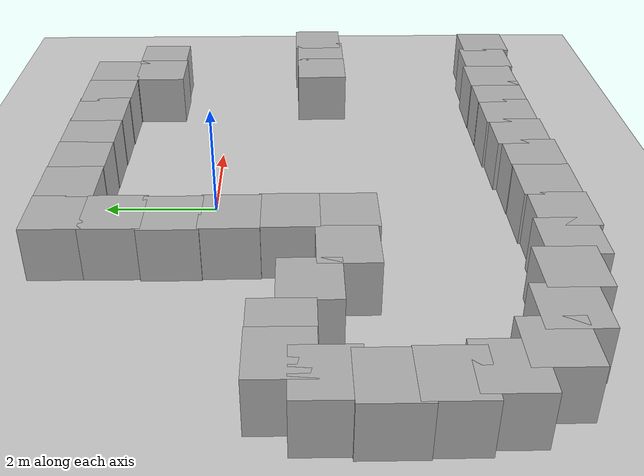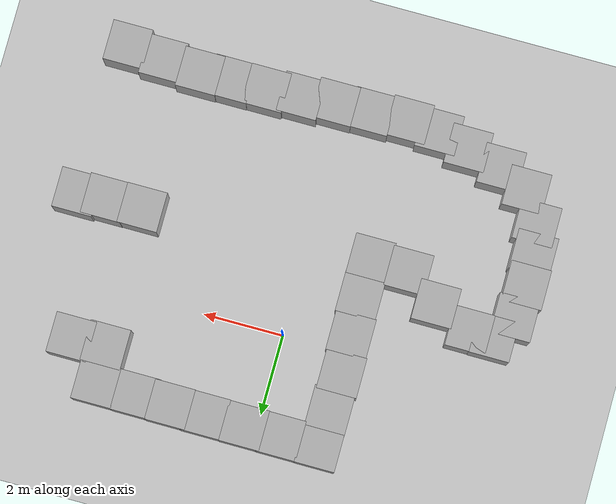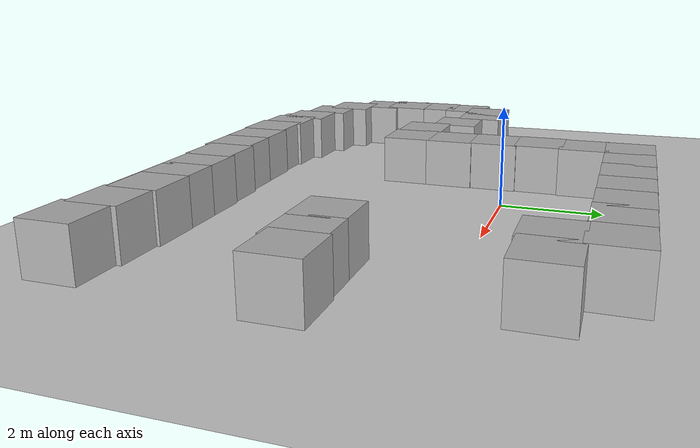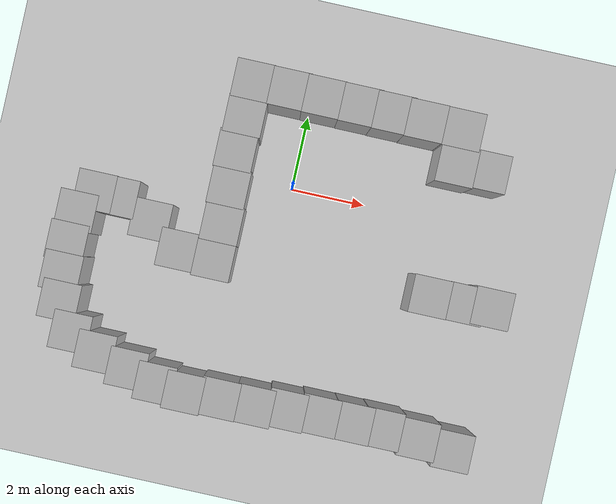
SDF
<sdf version="1.10">
 <world name="empty">
  <model name="ground_plane">
   <static>true</static>
   <link name="link">
    <collision name="collision">
     <geometry><plane><normal>0 0 1</normal><size>100 100</size></plane></geometry>
    </collision>
    <visual name="visual">
     <geometry><plane><normal>0 0 1</normal><size>100 100</size></plane></geometry>
     <material>
      <ambient>0.800000012 0.800000012 0.800000012 1</ambient>
      <diffuse>0.800000012 0.800000012 0.800000012 1</diffuse>
      <specular>0.800000012 0.800000012 0.800000012 1</specular>
     </material>
    </visual>
    <inertial>
     <mass>1</mass>
     <inertia><ixx>1</ixx><ixy>0</ixy><ixz>0</ixz><iyy>1</iyy><iyz>0</iyz><izz>1</izz></inertia>
    </inertial>
   </link>
  </model>
  <model name="box">
   <pose>3.0079871161953129 2.3686500018375138 0.5 0 0 0</pose>
   <link name="box_link">
    <inertial>
     <inertia><ixx>0.16666</ixx><ixy>0</ixy><ixz>0</ixz><iyy>0.16666</iyy><iyz>0</iyz><izz>0.16666</izz></inertia>
     <mass>1</mass>
    </inertial>
    <collision name="box_collision"><geometry><box><size>1 1 1</size></box></geometry></collision>
    <visual name="box_visual">
     <geometry><box><size>1 1 1</size></box></geometry>
     <material>
      <ambient>0.300000012 0.300000012 0.300000012 1</ambient>
      <diffuse>0.699999988 0.699999988 0.699999988 1</diffuse>
      <specular>1 1 1 1</specular>
     </material>
    </visual>
   </link>
   <static>false</static>
  </model>
  <model name="box_0">
   <pose>2.1453732176479967 2.3808256733937765 0.5 0 0 0</pose>
   <link name="box_link">
    <inertial>
     <inertia><ixx>0.16666</ixx><ixy>0</ixy><ixz>0</ixz><iyy>0.16666</iyy><iyz>0</iyz><izz>0.16666</izz></inertia>
     <mass>1</mass>
    </inertial>
    <collision name="box_collision"><geometry><box><size>1 1 1</size></box></geometry></collision>
    <visual name="box_visual">
     <geometry><box><size>1 1 1</size></box></geometry>
     <material>
      <ambient>0.300000012 0.300000012 0.300000012 1</ambient>
      <diffuse>0.699999988 0.699999988 0.699999988 1</diffuse>
      <specular>1 1 1 1</specular>
     </material>
    </visual>
   </link>
   <static>false</static>
  </model>
  <model name="box_1">
   <pose>1.2614542500504333 2.3905149469252533 0.5 0 0 0</pose>
   <link name="box_link">
    <inertial>
     <inertia><ixx>0.16666</ixx><ixy>0</ixy><ixz>0</ixz><iyy>0.16666</iyy><iyz>0</iyz><izz>0.16666</izz></inertia>
     <mass>1</mass>
    </inertial>
    <collision name="box_collision"><geometry><box><size>1 1 1</size></box></geometry></collision>
    <visual name="box_visual">
     <geometry><box><size>1 1 1</size></box></geometry>
     <material>
      <ambient>0.300000012 0.300000012 0.300000012 1</ambient>
      <diffuse>0.699999988 0.699999988 0.699999988 1</diffuse>
      <specular>1 1 1 1</specular>
     </material>
    </visual>
   </link>
   <static>false</static>
  </model>
  <model name="box_2">
   <pose>0.29255337068882481 2.3982446939954603 0.5 0 0 0</pose>
   <link name="box_link">
    <inertial>
     <inertia><ixx>0.16666</ixx><ixy>0</ixy><ixz>0</ixz><iyy>0.16666</iyy><iyz>0</iyz><izz>0.16666</izz></inertia>
     <mass>1</mass>
    </inertial>
    <collision name="box_collision"><geometry><box><size>1 1 1</size></box></geometry></collision>
    <visual name="box_visual">
     <geometry><box><size>1 1 1</size></box></geometry>
     <material>
      <ambient>0.300000012 0.300000012 0.300000012 1</ambient>
      <diffuse>0.699999988 0.699999988 0.699999988 1</diffuse>
      <specular>1 1 1 1</specular>
     </material>
    </visual>
   </link>
   <static>false</static>
  </model>
  <model name="box_3">
   <pose>-0.62413214879304268 2.4062911094616499 0.5 0 0 0</pose>
   <link name="box_link">
    <inertial>
     <inertia><ixx>0.16666</ixx><ixy>0</ixy><ixz>0</ixz><iyy>0.16666</iyy><iyz>0</iyz><izz>0.16666</izz></inertia>
     <mass>1</mass>
    </inertial>
    <collision name="box_collision"><geometry><box><size>1 1 1</size></box></geometry></collision>
    <visual name="box_visual">
     <geometry><box><size>1 1 1</size></box></geometry>
     <material>
      <ambient>0.300000012 0.300000012 0.300000012 1</ambient>
      <diffuse>0.699999988 0.699999988 0.699999988 1</diffuse>
      <specular>1 1 1 1</specular>
     </material>
    </visual>
   </link>
   <static>false</static>
  </model>
  <model name="box_4">
   <pose>-1.5886286068283371 2.412659694050959 0.5 0 0 0</pose>
   <link name="box_link">
    <inertial>
     <inertia><ixx>0.16666</ixx><ixy>0</ixy><ixz>0</ixz><iyy>0.16666</iyy><iyz>0</iyz><izz>0.16666</izz></inertia>
     <mass>1</mass>
    </inertial>
    <collision name="box_collision"><geometry><box><size>1 1 1</size></box></geometry></collision>
    <visual name="box_visual">
     <geometry><box><size>1 1 1</size></box></geometry>
     <material>
      <ambient>0.300000012 0.300000012 0.300000012 1</ambient>
      <diffuse>0.699999988 0.699999988 0.699999988 1</diffuse>
      <specular>1 1 1 1</specular>
     </material>
    </visual>
   </link>
   <static>false</static>
  </model>
  <model name="box_5">
   <pose>-1.5938097109825453 1.4868247377124071 0.5 0 0 0</pose>
   <link name="box_link">
    <inertial>
     <inertia><ixx>0.16666</ixx><ixy>0</ixy><ixz>0</ixz><iyy>0.16666</iyy><iyz>0</iyz><izz>0.16666</izz></inertia>
     <mass>1</mass>
    </inertial>
    <collision name="box_collision"><geometry><box><size>1 1 1</size></box></geometry></collision>
    <visual name="box_visual">
     <geometry><box><size>1 1 1</size></box></geometry>
     <material>
      <ambient>0.300000012 0.300000012 0.300000012 1</ambient>
      <diffuse>0.699999988 0.699999988 0.699999988 1</diffuse>
      <specular>1 1 1 1</specular>
     </material>
    </visual>
   </link>
   <static>false</static>
  </model>
  <model name="box_6">
   <pose>-1.6316784146209098 0.56075784091283531 0.5 0 0 0</pose>
   <link name="box_link">
    <inertial>
     <inertia><ixx>0.16666</ixx><ixy>0</ixy><ixz>0</ixz><iyy>0.16666</iyy><iyz>0</iyz><izz>0.16666</izz></inertia>
     <mass>1</mass>
    </inertial>
    <collision name="box_collision"><geometry><box><size>1 1 1</size></box></geometry></collision>
    <visual name="box_visual">
     <geometry><box><size>1 1 1</size></box></geometry>
     <material>
      <ambient>0.300000012 0.300000012 0.300000012 1</ambient>
      <diffuse>0.699999988 0.699999988 0.699999988 1</diffuse>
      <specular>1 1 1 1</specular>
     </material>
    </visual>
   </link>
   <static>false</static>
  </model>
  <model name="box_7">
   <pose>-1.6037016006819969 -0.39793595502820744 0.5 0 0 0</pose>
   <link name="box_link">
    <inertial>
     <inertia><ixx>0.16666</ixx><ixy>0</ixy><ixz>0</ixz><iyy>0.16666</iyy><iyz>0</iyz><izz>0.16666</izz></inertia>
     <mass>1</mass>
    </inertial>
    <collision name="box_collision"><geometry><box><size>1 1 1</size></box></geometry></collision>
    <visual name="box_visual">
     <geometry><box><size>1 1 1</size></box></geometry>
     <material>
      <ambient>0.300000012 0.300000012 0.300000012 1</ambient>
      <diffuse>0.699999988 0.699999988 0.699999988 1</diffuse>
      <specular>1 1 1 1</specular>
     </material>
    </visual>
   </link>
   <static>false</static>
  </model>
  <model name="box_8">
   <pose>-1.5765125690600119 -1.3572280065653266 0.5 0 0 0</pose>
   <link name="box_link">
    <inertial>
     <inertia><ixx>0.16666</ixx><ixy>0</ixy><ixz>0</ixz><iyy>0.16666</iyy><iyz>0</iyz><izz>0.16666</izz></inertia>
     <mass>1</mass>
    </inertial>
    <collision name="box_collision"><geometry><box><size>1 1 1</size></box></geometry></collision>
    <visual name="box_visual">
     <geometry><box><size>1 1 1</size></box></geometry>
     <material>
      <ambient>0.300000012 0.300000012 0.300000012 1</ambient>
      <diffuse>0.699999988 0.699999988 0.699999988 1</diffuse>
      <specular>1 1 1 1</specular>
     </material>
    </visual>
   </link>
   <static>false</static>
  </model>
  <model name="box_9">
   <pose>3.9979846397896166 2.3597763573608987 0.5 0 0 0</pose>
   <link name="box_link">
    <inertial>
     <inertia><ixx>0.16666</ixx><ixy>0</ixy><ixz>0</ixz><iyy>0.16666</iyy><iyz>0</iyz><izz>0.16666</izz></inertia>
     <mass>1</mass>
    </inertial>
    <collision name="box_collision"><geometry><box><size>1 1 1</size></box></geometry></collision>
    <visual name="box_visual">
     <geometry><box><size>1 1 1</size></box></geometry>
     <material>
      <ambient>0.300000012 0.300000012 0.300000012 1</ambient>
      <diffuse>0.699999988 0.699999988 0.699999988 1</diffuse>
      <specular>1 1 1 1</specular>
     </material>
    </visual>
   </link>
   <static>false</static>
  </model>
  <model name="box_10">
   <pose>4.0304313556988474 1.4138038312960348 0.5 0 0 0</pose>
   <link name="box_link">
    <inertial>
     <inertia><ixx>0.16666</ixx><ixy>0</ixy><ixz>0</ixz><iyy>0.16666</iyy><iyz>0</iyz><izz>0.16666</izz></inertia>
     <mass>1</mass>
    </inertial>
    <collision name="box_collision"><geometry><box><size>1 1 1</size></box></geometry></collision>
    <visual name="box_visual">
     <geometry><box><size>1 1 1</size></box></geometry>
     <material>
      <ambient>0.300000012 0.300000012 0.300000012 1</ambient>
      <diffuse>0.699999988 0.699999988 0.699999988 1</diffuse>
      <specular>1 1 1 1</specular>
     </material>
    </visual>
   </link>
   <static>false</static>
  </model>
  <model name="box_13">
   <pose>-1.5812241489552892 -2.3163360658210621 0.5 0 0 0</pose>
   <link name="box_link">
    <inertial>
     <inertia><ixx>0.16666</ixx><ixy>0</ixy><ixz>0</ixz><iyy>0.16666</iyy><iyz>0</iyz><izz>0.16666</izz></inertia>
     <mass>1</mass>
    </inertial>
    <collision name="box_collision"><geometry><box><size>1 1 1</size></box></geometry></collision>
    <visual name="box_visual">
     <geometry><box><size>1 1 1</size></box></geometry>
     <material>
      <ambient>0.300000012 0.300000012 0.300000012 1</ambient>
      <diffuse>0.699999988 0.699999988 0.699999988 1</diffuse>
      <specular>1 1 1 1</specular>
     </material>
    </visual>
   </link>
   <static>false</static>
  </model>
  <model name="box_14">
   <pose>-1.5991276888903656 -5.8220336831454462 0.5 0 0 0</pose>
   <link name="box_link">
    <inertial>
     <inertia><ixx>0.16666</ixx><ixy>0</ixy><ixz>0</ixz><iyy>0.16666</iyy><iyz>0</iyz><izz>0.16666</izz></inertia>
     <mass>1</mass>
    </inertial>
    <collision name="box_collision"><geometry><box><size>1 1 1</size></box></geometry></collision>
    <visual name="box_visual">
     <geometry><box><size>1 1 1</size></box></geometry>
     <material>
      <ambient>0.300000012 0.300000012 0.300000012 1</ambient>
      <diffuse>0.699999988 0.699999988 0.699999988 1</diffuse>
      <specular>1 1 1 1</specular>
     </material>
    </visual>
   </link>
   <static>false</static>
  </model>
  <model name="box_15">
   <pose>-0.6679163514540547 -5.7791309798009545 0.5 0 0 0</pose>
   <link name="box_link">
    <inertial>
     <inertia><ixx>0.16666</ixx><ixy>0</ixy><ixz>0</ixz><iyy>0.16666</iyy><iyz>0</iyz><izz>0.16666</izz></inertia>
     <mass>1</mass>
    </inertial>
    <collision name="box_collision"><geometry><box><size>1 1 1</size></box></geometry></collision>
    <visual name="box_visual">
     <geometry><box><size>1 1 1</size></box></geometry>
     <material>
      <ambient>0.300000012 0.300000012 0.300000012 1</ambient>
      <diffuse>0.699999988 0.699999988 0.699999988 1</diffuse>
      <specular>1 1 1 1</specular>
     </material>
    </visual>
   </link>
   <static>false</static>
  </model>
  <model name="box_16">
   <pose>0.24921688583933044 -5.7667838469729507 0.5 0 0 0</pose>
   <link name="box_link">
    <inertial>
     <inertia><ixx>0.16666</ixx><ixy>0</ixy><ixz>0</ixz><iyy>0.16666</iyy><iyz>0</iyz><izz>0.16666</izz></inertia>
     <mass>1</mass>
    </inertial>
    <collision name="box_collision"><geometry><box><size>1 1 1</size></box></geometry></collision>
    <visual name="box_visual">
     <geometry><box><size>1 1 1</size></box></geometry>
     <material>
      <ambient>0.300000012 0.300000012 0.300000012 1</ambient>
      <diffuse>0.699999988 0.699999988 0.699999988 1</diffuse>
      <specular>1 1 1 1</specular>
     </material>
    </visual>
   </link>
   <static>false</static>
  </model>
  <model name="box_17">
   <pose>1.0995042201357097 -5.6936600068478729 0.5 0 0 0</pose>
   <link name="box_link">
    <inertial>
     <inertia><ixx>0.16666</ixx><ixy>0</ixy><ixz>0</ixz><iyy>0.16666</iyy><iyz>0</iyz><izz>0.16666</izz></inertia>
     <mass>1</mass>
    </inertial>
    <collision name="box_collision"><geometry><box><size>1 1 1</size></box></geometry></collision>
    <visual name="box_visual">
     <geometry><box><size>1 1 1</size></box></geometry>
     <material>
      <ambient>0.300000012 0.300000012 0.300000012 1</ambient>
      <diffuse>0.699999988 0.699999988 0.699999988 1</diffuse>
      <specular>1 1 1 1</specular>
     </material>
    </visual>
   </link>
   <static>false</static>
  </model>
  <model name="box_18">
   <pose>1.9632138312573182 -5.6515021187401713 0.5 0 0 0</pose>
   <link name="box_link">
    <inertial>
     <inertia><ixx>0.16666</ixx><ixy>0</ixy><ixz>0</ixz><iyy>0.16666</iyy><iyz>0</iyz><izz>0.16666</izz></inertia>
     <mass>1</mass>
    </inertial>
    <collision name="box_collision"><geometry><box><size>1 1 1</size></box></geometry></collision>
    <visual name="box_visual">
     <geometry><box><size>1 1 1</size></box></geometry>
     <material>
      <ambient>0.300000012 0.300000012 0.300000012 1</ambient>
      <diffuse>0.699999988 0.699999988 0.699999988 1</diffuse>
      <specular>1 1 1 1</specular>
     </material>
    </visual>
   </link>
   <static>false</static>
  </model>
  <model name="box_19">
   <pose>2.8435849638351103 -5.6446107362695379 0.5 0 0 0</pose>
   <link name="box_link">
    <inertial>
     <inertia><ixx>0.16666</ixx><ixy>0</ixy><ixz>0</ixz><iyy>0.16666</iyy><iyz>0</iyz><izz>0.16666</izz></inertia>
     <mass>1</mass>
    </inertial>
    <collision name="box_collision"><geometry><box><size>1 1 1</size></box></geometry></collision>
    <visual name="box_visual">
     <geometry><box><size>1 1 1</size></box></geometry>
     <material>
      <ambient>0.300000012 0.300000012 0.300000012 1</ambient>
      <diffuse>0.699999988 0.699999988 0.699999988 1</diffuse>
      <specular>1 1 1 1</specular>
     </material>
    </visual>
   </link>
   <static>false</static>
  </model>
  <model name="box_20">
   <pose>3.6310754209656499 -5.6331899309903868 0.5 0 0 0</pose>
   <link name="box_link">
    <inertial>
     <inertia><ixx>0.16666</ixx><ixy>0</ixy><ixz>0</ixz><iyy>0.16666</iyy><iyz>0</iyz><izz>0.16666</izz></inertia>
     <mass>1</mass>
    </inertial>
    <collision name="box_collision"><geometry><box><size>1 1 1</size></box></geometry></collision>
    <visual name="box_visual">
     <geometry><box><size>1 1 1</size></box></geometry>
     <material>
      <ambient>0.300000012 0.300000012 0.300000012 1</ambient>
      <diffuse>0.699999988 0.699999988 0.699999988 1</diffuse>
      <specular>1 1 1 1</specular>
     </material>
    </visual>
   </link>
   <static>false</static>
  </model>
  <model name="box_21">
   <pose>4.5793537680142826 -5.6973460795365849 0.5 0 0 0</pose>
   <link name="box_link">
    <inertial>
     <inertia><ixx>0.16666</ixx><ixy>0</ixy><ixz>0</ixz><iyy>0.16666</iyy><iyz>0</iyz><izz>0.16666</izz></inertia>
     <mass>1</mass>
    </inertial>
    <collision name="box_collision"><geometry><box><size>1 1 1</size></box></geometry></collision>
    <visual name="box_visual">
     <geometry><box><size>1 1 1</size></box></geometry>
     <material>
      <ambient>0.300000012 0.300000012 0.300000012 1</ambient>
      <diffuse>0.699999988 0.699999988 0.699999988 1</diffuse>
      <specular>1 1 1 1</specular>
     </material>
    </visual>
   </link>
   <static>false</static>
  </model>
  <model name="box_22">
   <pose>5.5076295568144982 -5.7967334509771442 0.5 0 0 0</pose>
   <link name="box_link">
    <inertial>
     <inertia><ixx>0.16666</ixx><ixy>0</ixy><ixz>0</ixz><iyy>0.16666</iyy><iyz>0</iyz><izz>0.16666</izz></inertia>
     <mass>1</mass>
    </inertial>
    <collision name="box_collision"><geometry><box><size>1 1 1</size></box></geometry></collision>
    <visual name="box_visual">
     <geometry><box><size>1 1 1</size></box></geometry>
     <material>
      <ambient>0.300000012 0.300000012 0.300000012 1</ambient>
      <diffuse>0.699999988 0.699999988 0.699999988 1</diffuse>
      <specular>1 1 1 1</specular>
     </material>
    </visual>
   </link>
   <static>false</static>
  </model>
  <model name="box_24">
   <pose>4.0863181986121777 -2.0317689663570846 0.5 0 0 0</pose>
   <link name="box_link">
    <inertial>
     <inertia><ixx>0.16666</ixx><ixy>0</ixy><ixz>0</ixz><iyy>0.16666</iyy><iyz>0</iyz><izz>0.16666</izz></inertia>
     <mass>1</mass>
    </inertial>
    <collision name="box_collision"><geometry><box><size>1 1 1</size></box></geometry></collision>
    <visual name="box_visual">
     <geometry><box><size>1 1 1</size></box></geometry>
     <material>
      <ambient>0.300000012 0.300000012 0.300000012 1</ambient>
      <diffuse>0.699999988 0.699999988 0.699999988 1</diffuse>
      <specular>1 1 1 1</specular>
     </material>
    </visual>
   </link>
   <static>false</static>
  </model>
  <model name="box_11">
   <pose>4.8760877751892817 1.4418975246458556 0.5 0 0 0</pose>
   <link name="box_link">
    <inertial>
     <inertia><ixx>0.16666</ixx><ixy>0</ixy><ixz>0</ixz><iyy>0.16666</iyy><iyz>0</iyz><izz>0.16666</izz></inertia>
     <mass>1</mass>
    </inertial>
    <collision name="box_collision"><geometry><box><size>1 1 1</size></box></geometry></collision>
    <visual name="box_visual">
     <geometry><box><size>1 1 1</size></box></geometry>
     <material>
      <ambient>0.300000012 0.300000012 0.300000012 1</ambient>
      <diffuse>0.699999988 0.699999988 0.699999988 1</diffuse>
      <specular>1 1 1 1</specular>
     </material>
    </visual>
   </link>
   <static>false</static>
  </model>
  <model name="box_38">
   <pose>5.7150771154558768 -1.9844148260576042 0.5 0 0 0</pose>
   <link name="box_link">
    <inertial>
     <inertia><ixx>0.16666</ixx><ixy>0</ixy><ixz>0</ixz><iyy>0.16666</iyy><iyz>0</iyz><izz>0.16666</izz></inertia>
     <mass>1</mass>
    </inertial>
    <collision name="box_collision"><geometry><box><size>1 1 1</size></box></geometry></collision>
    <visual name="box_visual">
     <geometry><box><size>1 1 1</size></box></geometry>
     <material>
      <ambient>0.300000012 0.300000012 0.300000012 1</ambient>
      <diffuse>0.699999988 0.699999988 0.699999988 1</diffuse>
      <specular>1 1 1 1</specular>
     </material>
    </visual>
   </link>
   <static>false</static>
  </model>
  <model name="box_39">
   <pose>5.0053946273555994 -2.025054221012669 0.5 0 0 0</pose>
   <link name="box_link">
    <inertial>
     <inertia><ixx>0.16666</ixx><ixy>0</ixy><ixz>0</ixz><iyy>0.16666</iyy><iyz>0</iyz><izz>0.16666</izz></inertia>
     <mass>1</mass>
    </inertial>
    <collision name="box_collision"><geometry><box><size>1 1 1</size></box></geometry></collision>
    <visual name="box_visual">
     <geometry><box><size>1 1 1</size></box></geometry>
     <material>
      <ambient>0.300000012 0.300000012 0.300000012 1</ambient>
      <diffuse>0.699999988 0.699999988 0.699999988 1</diffuse>
      <specular>1 1 1 1</specular>
     </material>
    </visual>
   </link>
   <static>false</static>
  </model>
  <model name="box_64">
   <pose>-2.5426362114911676 -2.2666875568775779 0.5 0 0 0</pose>
   <link name="box_link">
    <inertial>
     <inertia><ixx>0.16666</ixx><ixy>0</ixy><ixz>0</ixz><iyy>0.16666</iyy><iyz>0</iyz><izz>0.16666</izz></inertia>
     <mass>1</mass>
    </inertial>
    <collision name="box_collision"><geometry><box><size>1 1 1</size></box></geometry></collision>
    <visual name="box_visual">
     <geometry><box><size>1 1 1</size></box></geometry>
     <material>
      <ambient>0.300000012 0.300000012 0.300000012 1</ambient>
      <diffuse>0.699999988 0.699999988 0.699999988 1</diffuse>
      <specular>1 1 1 1</specular>
     </material>
    </visual>
   </link>
   <static>false</static>
  </model>
  <model name="box_65">
   <pose>-2.3705365408311212 -5.7476478908063804 0.5 0 0 0</pose>
   <link name="box_link">
    <inertial>
     <inertia><ixx>0.16666</ixx><ixy>0</ixy><ixz>0</ixz><iyy>0.16666</iyy><iyz>0</iyz><izz>0.16666</izz></inertia>
     <mass>1</mass>
    </inertial>
    <collision name="box_collision"><geometry><box><size>1 1 1</size></box></geometry></collision>
    <visual name="box_visual">
     <geometry><box><size>1 1 1</size></box></geometry>
     <material>
      <ambient>0.300000012 0.300000012 0.300000012 1</ambient>
      <diffuse>0.699999988 0.699999988 0.699999988 1</diffuse>
      <specular>1 1 1 1</specular>
     </material>
    </visual>
   </link>
   <static>false</static>
  </model>
  <model name="box_66">
   <pose>-3.1586554324694891 -5.53784657671775 0.5 0 0 0</pose>
   <link name="box_link">
    <inertial>
     <inertia><ixx>0.16666</ixx><ixy>0</ixy><ixz>0</ixz><iyy>0.16666</iyy><iyz>0</iyz><izz>0.16666</izz></inertia>
     <mass>1</mass>
    </inertial>
    <collision name="box_collision"><geometry><box><size>1 1 1</size></box></geometry></collision>
    <visual name="box_visual">
     <geometry><box><size>1 1 1</size></box></geometry>
     <material>
      <ambient>0.300000012 0.300000012 0.300000012 1</ambient>
      <diffuse>0.699999988 0.699999988 0.699999988 1</diffuse>
      <specular>1 1 1 1</specular>
     </material>
    </visual>
   </link>
   <static>false</static>
  </model>
  <model name="box_67">
   <pose>-4.0547621249487591 -5.2872883360684053 0.5 0 0 0</pose>
   <link name="box_link">
    <inertial>
     <inertia><ixx>0.16666</ixx><ixy>0</ixy><ixz>0</ixz><iyy>0.16666</iyy><iyz>0</iyz><izz>0.16666</izz></inertia>
     <mass>1</mass>
    </inertial>
    <collision name="box_collision"><geometry><box><size>1 1 1</size></box></geometry></collision>
    <visual name="box_visual">
     <geometry><box><size>1 1 1</size></box></geometry>
     <material>
      <ambient>0.300000012 0.300000012 0.300000012 1</ambient>
      <diffuse>0.699999988 0.699999988 0.699999988 1</diffuse>
      <specular>1 1 1 1</specular>
     </material>
    </visual>
   </link>
   <static>false</static>
  </model>
  <model name="box_68">
   <pose>-4.7830601799484462 -4.9239398831681847 0.5 0 0 0</pose>
   <link name="box_link">
    <inertial>
     <inertia><ixx>0.16666</ixx><ixy>0</ixy><ixz>0</ixz><iyy>0.16666</iyy><iyz>0</iyz><izz>0.16666</izz></inertia>
     <mass>1</mass>
    </inertial>
    <collision name="box_collision"><geometry><box><size>1 1 1</size></box></geometry></collision>
    <visual name="box_visual">
     <geometry><box><size>1 1 1</size></box></geometry>
     <material>
      <ambient>0.300000012 0.300000012 0.300000012 1</ambient>
      <diffuse>0.699999988 0.699999988 0.699999988 1</diffuse>
      <specular>1 1 1 1</specular>
     </material>
    </visual>
   </link>
   <static>false</static>
  </model>
  <model name="box_69">
   <pose>-5.2293874426572309 -4.1995114919213794 0.5 0 0 0</pose>
   <link name="box_link">
    <inertial>
     <inertia><ixx>0.16666</ixx><ixy>0</ixy><ixz>0</ixz><iyy>0.16666</iyy><iyz>0</iyz><izz>0.16666</izz></inertia>
     <mass>1</mass>
    </inertial>
    <collision name="box_collision"><geometry><box><size>1 1 1</size></box></geometry></collision>
    <visual name="box_visual">
     <geometry><box><size>1 1 1</size></box></geometry>
     <material>
      <ambient>0.300000012 0.300000012 0.300000012 1</ambient>
      <diffuse>0.699999988 0.699999988 0.699999988 1</diffuse>
      <specular>1 1 1 1</specular>
     </material>
    </visual>
   </link>
   <static>false</static>
  </model>
  <model name="box_70">
   <pose>-5.3452967225416099 -3.4627882906267202 0.5 0 0 0</pose>
   <link name="box_link">
    <inertial>
     <inertia><ixx>0.16666</ixx><ixy>0</ixy><ixz>0</ixz><iyy>0.16666</iyy><iyz>0</iyz><izz>0.16666</izz></inertia>
     <mass>1</mass>
    </inertial>
    <collision name="box_collision"><geometry><box><size>1 1 1</size></box></geometry></collision>
    <visual name="box_visual">
     <geometry><box><size>1 1 1</size></box></geometry>
     <material>
      <ambient>0.300000012 0.300000012 0.300000012 1</ambient>
      <diffuse>0.699999988 0.699999988 0.699999988 1</diffuse>
      <specular>1 1 1 1</specular>
     </material>
    </visual>
   </link>
   <static>false</static>
  </model>
  <model name="box_71">
   <pose>-5.3717682773697817 -2.6688878458020238 0.5 0 0 0</pose>
   <link name="box_link">
    <inertial>
     <inertia><ixx>0.16666</ixx><ixy>0</ixy><ixz>0</ixz><iyy>0.16666</iyy><iyz>0</iyz><izz>0.16666</izz></inertia>
     <mass>1</mass>
    </inertial>
    <collision name="box_collision"><geometry><box><size>1 1 1</size></box></geometry></collision>
    <visual name="box_visual">
     <geometry><box><size>1 1 1</size></box></geometry>
     <material>
      <ambient>0.300000012 0.300000012 0.300000012 1</ambient>
      <diffuse>0.699999988 0.699999988 0.699999988 1</diffuse>
      <specular>1 1 1 1</specular>
     </material>
    </visual>
   </link>
   <static>false</static>
  </model>
  <model name="box_72">
   <pose>-5.3072490756486612 -1.8450623034448799 0.5 0 0 0</pose>
   <link name="box_link">
    <inertial>
     <inertia><ixx>0.16666</ixx><ixy>0</ixy><ixz>0</ixz><iyy>0.16666</iyy><iyz>0</iyz><izz>0.16666</izz></inertia>
     <mass>1</mass>
    </inertial>
    <collision name="box_collision"><geometry><box><size>1 1 1</size></box></geometry></collision>
    <visual name="box_visual">
     <geometry><box><size>1 1 1</size></box></geometry>
     <material>
      <ambient>0.300000012 0.300000012 0.300000012 1</ambient>
      <diffuse>0.699999988 0.699999988 0.699999988 1</diffuse>
      <specular>1 1 1 1</specular>
     </material>
    </visual>
   </link>
   <static>false</static>
  </model>
  <model name="box_73">
   <pose>-4.9451733479172795 -1.2475501814506655 0.5 0 0 0</pose>
   <link name="box_link">
    <inertial>
     <inertia><ixx>0.16666</ixx><ixy>0</ixy><ixz>0</ixz><iyy>0.16666</iyy><iyz>0</iyz><izz>0.16666</izz></inertia>
     <mass>1</mass>
    </inertial>
    <collision name="box_collision"><geometry><box><size>1 1 1</size></box></geometry></collision>
    <visual name="box_visual">
     <geometry><box><size>1 1 1</size></box></geometry>
     <material>
      <ambient>0.300000012 0.300000012 0.300000012 1</ambient>
      <diffuse>0.699999988 0.699999988 0.699999988 1</diffuse>
      <specular>1 1 1 1</specular>
     </material>
    </visual>
   </link>
   <static>false</static>
  </model>
  <model name="box_74">
   <pose>-4.3397885473070046 -1.2571082533435991 0.5 0 0 0</pose>
   <link name="box_link">
    <inertial>
     <inertia><ixx>0.16666</ixx><ixy>0</ixy><ixz>0</ixz><iyy>0.16666</iyy><iyz>0</iyz><izz>0.16666</izz></inertia>
     <mass>1</mass>
    </inertial>
    <collision name="box_collision"><geometry><box><size>1 1 1</size></box></geometry></collision>
    <visual name="box_visual">
     <geometry><box><size>1 1 1</size></box></geometry>
     <material>
      <ambient>0.300000012 0.300000012 0.300000012 1</ambient>
      <diffuse>0.699999988 0.699999988 0.699999988 1</diffuse>
      <specular>1 1 1 1</specular>
     </material>
    </visual>
   </link>
   <static>false</static>
  </model>
  <model name="box_75">
   <pose>-3.387902329910975 -1.6613146958183571 0.5 0 0 0</pose>
   <link name="box_link">
    <inertial>
     <inertia><ixx>0.16666</ixx><ixy>0</ixy><ixz>0</ixz><iyy>0.16666</iyy><iyz>0</iyz><izz>0.16666</izz></inertia>
     <mass>1</mass>
    </inertial>
    <collision name="box_collision"><geometry><box><size>1 1 1</size></box></geometry></collision>
    <visual name="box_visual">
     <geometry><box><size>1 1 1</size></box></geometry>
     <material>
      <ambient>0.300000012 0.300000012 0.300000012 1</ambient>
      <diffuse>0.699999988 0.699999988 0.699999988 1</diffuse>
      <specular>1 1 1 1</specular>
     </material>
    </visual>
   </link>
   <static>false</static>
  </model>
 </world>
</sdf>
